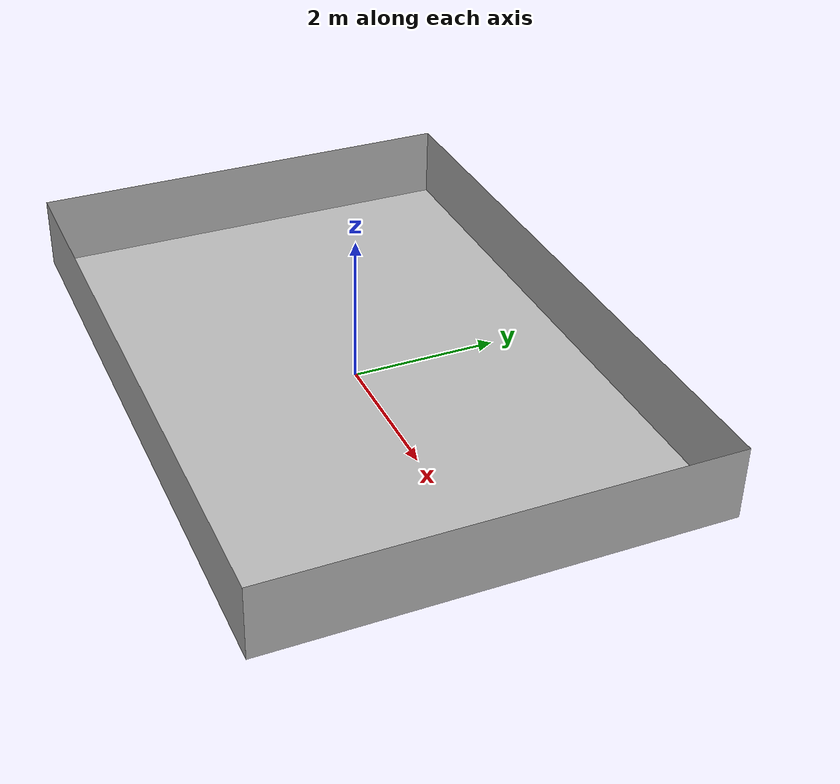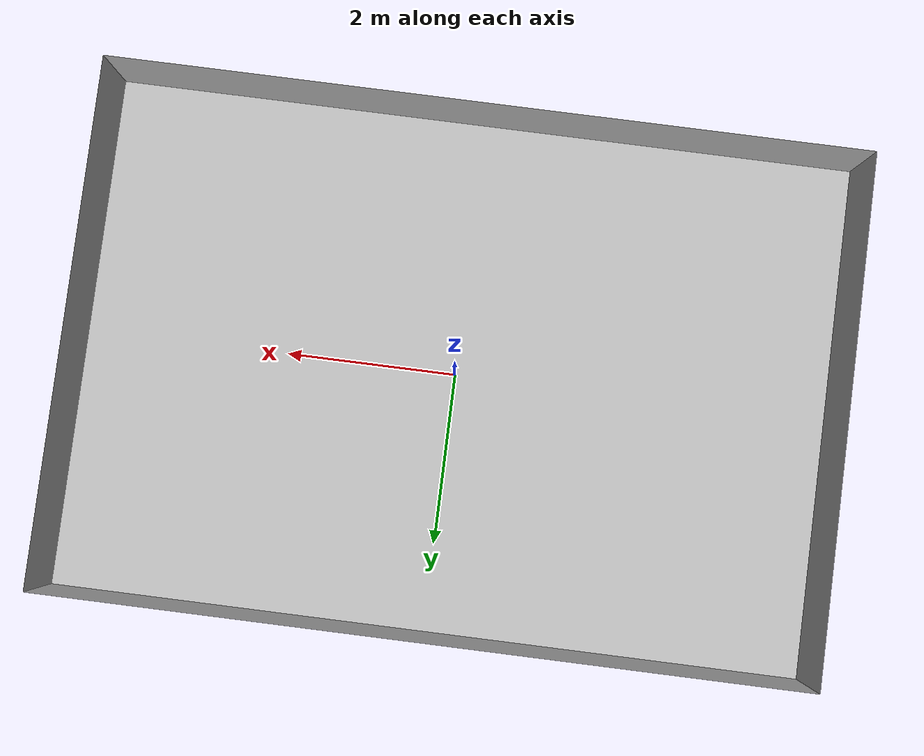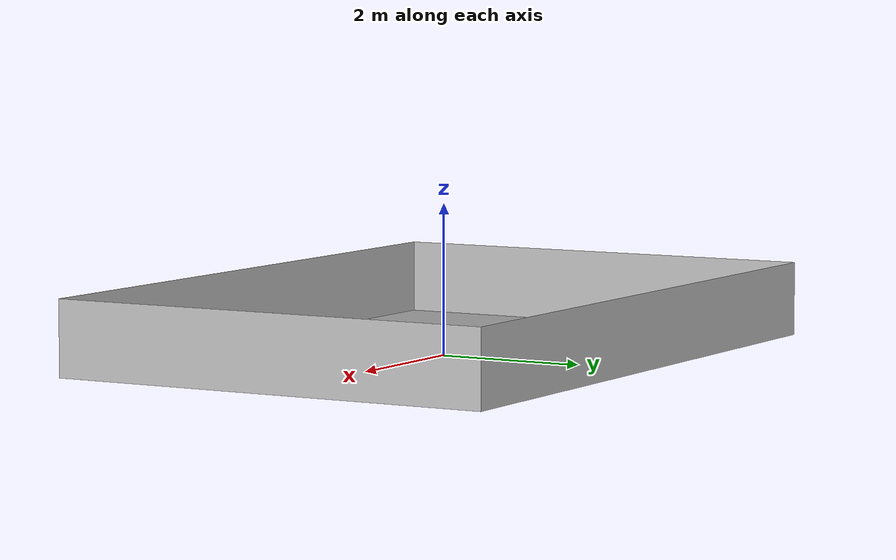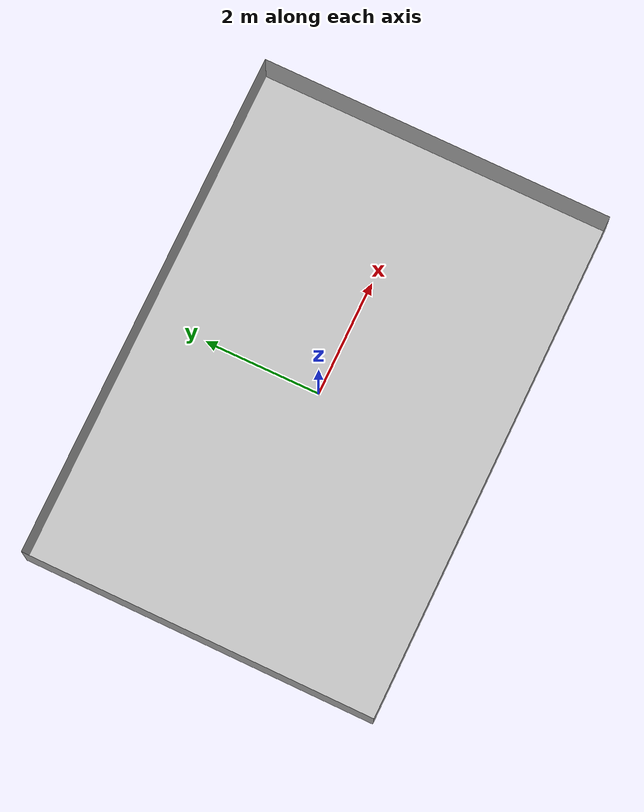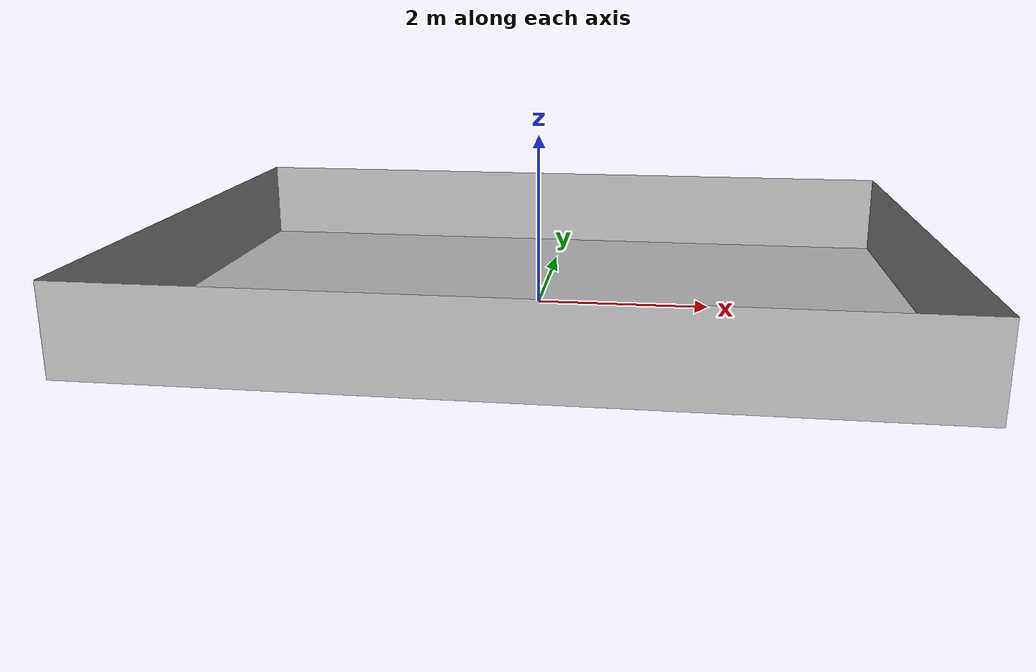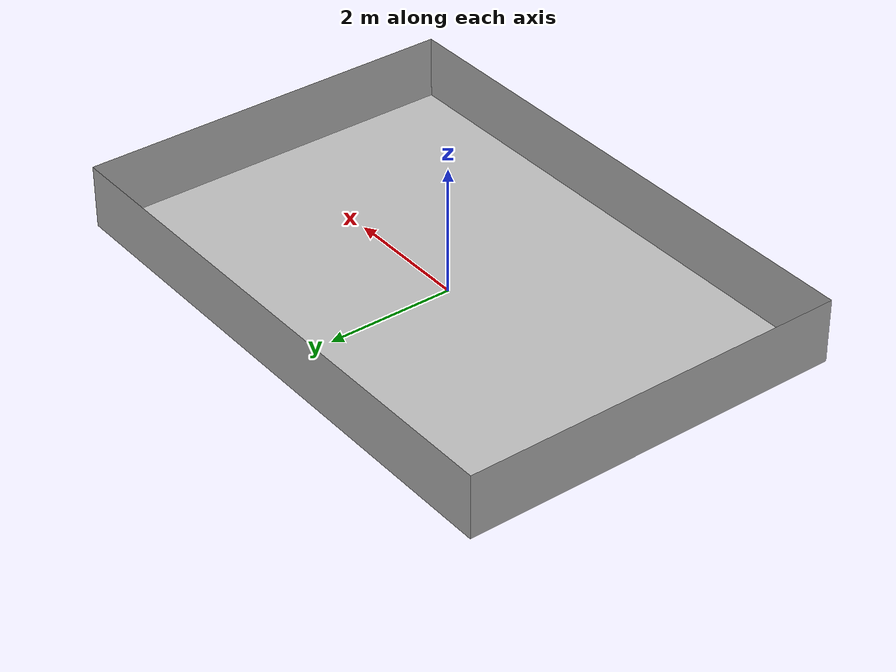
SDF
<?xml version='1.0' encoding='utf-8'?>
<sdf version="1.4">
<model name="template_model">
<link name="track">
<collision name="collision">
<pose>0 0 0 0 0 0</pose>
<geometry>
<mesh>
<uri>model://meshes/reInvent2019_wide_ccw/reInvent2019_wide_ccw_collision.dae</uri>
</mesh>
</geometry>
</collision>
<visual name="visual">
<pose>0 0 0 0 0 0</pose>
<geometry>
<mesh>
<uri>model://meshes/reInvent2019_wide_ccw/reInvent2019_wide_ccw.dae</uri>
</mesh>
</geometry>
</visual>
</link>
<static>1</static>
</model>
</sdf>
